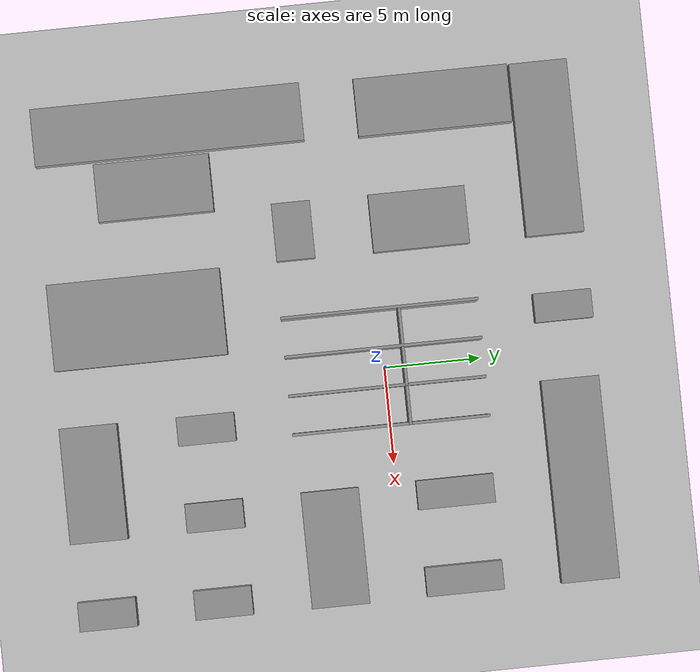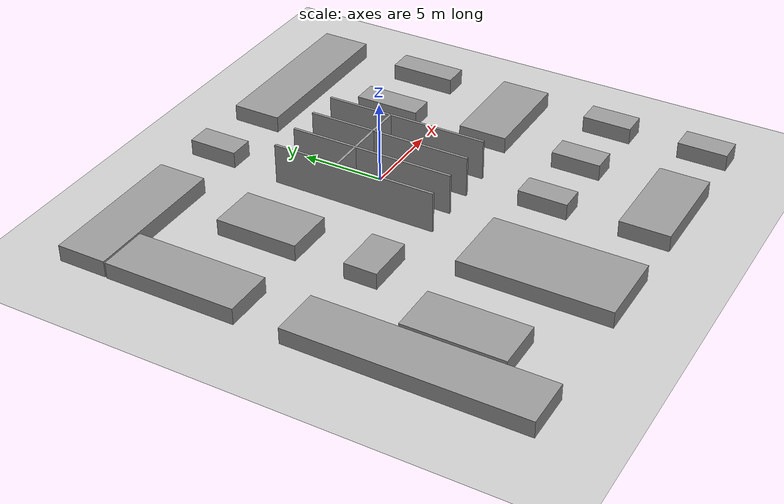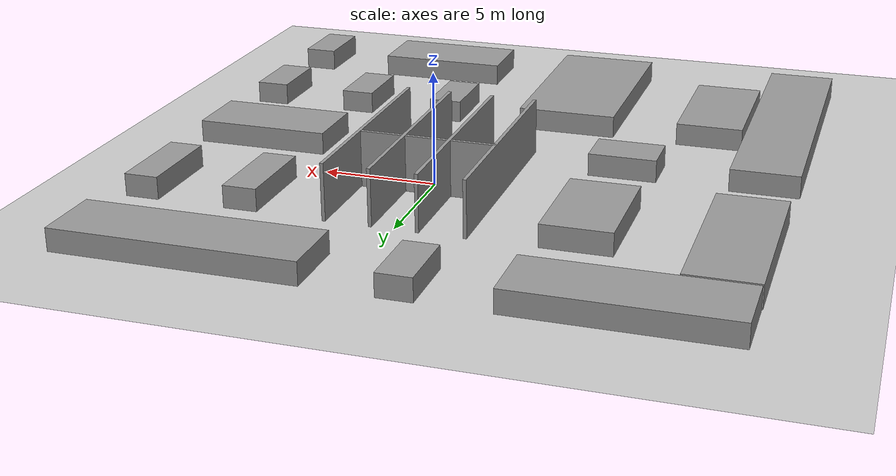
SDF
<sdf version="1.6">
 <world name="default">
  <light name="sun" type="directional">
   <pose>0 0 10 0 -0 0</pose>
   <diffuse>0.8 0.8 0.8 1</diffuse>
   <specular>0.2 0.2 0.2 1</specular>
   <attenuation>
    <range>1000</range>
    <constant>0.9</constant>
    <linear>0.01</linear>
    <quadratic>0.001</quadratic>
   </attenuation>
   <direction>-0.5 0.1 -0.9</direction>
  </light>
  <model name="ground_plane">
   <static>1</static>
   <link name="link">
    <collision name="collision">
     <geometry><plane><normal>0 0 1</normal><size>100 100</size></plane></geometry>
     <surface><friction><ode><mu>100</mu><mu2>50</mu2></ode></friction></surface>
    </collision>
    <visual name="visual">
     <cast_shadows>0</cast_shadows>
     <geometry><plane><normal>0 0 1</normal><size>100 100</size></plane></geometry>
     <material>
      <script><uri>file://media/materials/scripts/gazebo.material</uri><name>Gazebo/Grey</name></script>
     </material>
    </visual>
   </link>
  </model>
  <gravity>0 0 -9.8</gravity>
  <magnetic_field>6e-06 2.3e-05 -4.2e-05</magnetic_field>
  <atmosphere type="adiabatic"/>
  <physics name="default_physics" default="0" type="ode">
   <max_step_size>0.001</max_step_size>
   <real_time_factor>1</real_time_factor>
   <real_time_update_rate>1000</real_time_update_rate>
  </physics>
  <scene><ambient>0.4 0.4 0.4 1</ambient><background>0.7 0.7 0.7 1</background><shadows>1</shadows></scene>
  <audio><device>default</device></audio>
  <spherical_coordinates>
   <surface_model>EARTH_WGS84</surface_model>
   <latitude_deg>0</latitude_deg>
   <longitude_deg>0</longitude_deg>
   <elevation>0</elevation>
   <heading_deg>0</heading_deg>
  </spherical_coordinates>
  <model name="unit_box_1">
   <link name="link">
    <inertial>
     <mass>1</mass>
     <inertia>
      <ixx>0.166667</ixx>
      <ixy>0</ixy>
      <ixz>0</ixz>
      <iyy>0.166667</iyy>
      <iyz>0</iyz>
      <izz>0.166667</izz>
     </inertia>
    </inertial>
    <visual name="visual">
     <geometry><box><size>3 2 1</size></box></geometry>
     <material>
      <script><name>Gazebo/Grey</name><uri>file://media/materials/scripts/gazebo.material</uri></script>
      <shader type="vertex"><normal_map>__default__</normal_map></shader>
      <ambient>0.3 0.3 0.3 1</ambient>
      <diffuse>0.7 0.7 0.7 1</diffuse>
      <specular>0.01 0.01 0.01 1</specular>
      <emissive>0 0 0 1</emissive>
     </material>
    </visual>
    <collision name="collision">
     <geometry><box><size>3 2 1</size></box></geometry>
     <surface>
      <friction>
       <ode><mu>1</mu><mu2>1</mu2><fdir1>0 0 0</fdir1><slip1>0</slip1><slip2>0</slip2></ode>
       <torsional>
        <coefficient>1</coefficient>
        <patch_radius>0</patch_radius>
        <surface_radius>0</surface_radius>
        <use_patch_radius>1</use_patch_radius>
        <ode><slip>0</slip></ode>
       </torsional>
      </friction>
      <bounce><restitution_coefficient>0</restitution_coefficient><threshold>1e+06</threshold></bounce>
      <contact>
       <collide_without_contact>0</collide_without_contact>
       <collide_without_contact_bitmask>1</collide_without_contact_bitmask>
       <collide_bitmask>1</collide_bitmask>
       <ode>
        <soft_cfm>0</soft_cfm>
        <soft_erp>0.2</soft_erp>
        <kp>1e+13</kp>
        <kd>1</kd>
        <max_vel>0.01</max_vel>
        <min_depth>0</min_depth>
       </ode>
       <bullet>
        <split_impulse>1</split_impulse>
        <split_impulse_penetration_threshold>-0.01</split_impulse_penetration_threshold>
        <soft_cfm>0</soft_cfm>
        <soft_erp>0.2</soft_erp>
        <kp>1e+13</kp>
        <kd>1</kd>
       </bullet>
      </contact>
     </surface>
    </collision>
   </link>
   <static>0</static>
   <pose>-7.49956 -4.00012 0.499996 -4e-06 0 0</pose>
  </model>
  <model name="unit_box_9">
   <link name="link">
    <inertial>
     <mass>1</mass>
     <inertia>
      <ixx>0.166667</ixx>
      <ixy>0</ixy>
      <ixz>0</ixz>
      <iyy>0.166667</iyy>
      <iyz>0</iyz>
      <izz>0.166667</izz>
     </inertia>
    </inertial>
    <visual name="visual">
     <geometry><box><size>9 3 1</size></box></geometry>
     <material>
      <script><name>Gazebo/Grey</name><uri>file://media/materials/scripts/gazebo.material</uri></script>
      <shader type="vertex"><normal_map>__default__</normal_map></shader>
      <ambient>0.3 0.3 0.3 1</ambient>
      <diffuse>0.7 0.7 0.7 1</diffuse>
      <specular>0.01 0.01 0.01 1</specular>
      <emissive>0 0 0 1</emissive>
     </material>
     <pose>0 0 0.5 0 -0 0</pose>
    </visual>
    <collision name="collision">
     <pose>0 0 0.5 0 -0 0</pose>
     <geometry><box><size>9 3 1</size></box></geometry>
     <surface>
      <friction>
       <ode><mu>1</mu><mu2>1</mu2><fdir1>0 0 0</fdir1><slip1>0</slip1><slip2>0</slip2></ode>
       <torsional>
        <coefficient>1</coefficient>
        <patch_radius>0</patch_radius>
        <surface_radius>0</surface_radius>
        <use_patch_radius>1</use_patch_radius>
        <ode><slip>0</slip></ode>
       </torsional>
      </friction>
      <bounce><restitution_coefficient>0</restitution_coefficient><threshold>1e+06</threshold></bounce>
      <contact>
       <collide_without_contact>0</collide_without_contact>
       <collide_without_contact_bitmask>1</collide_without_contact_bitmask>
       <collide_bitmask>1</collide_bitmask>
       <ode>
        <soft_cfm>0</soft_cfm>
        <soft_erp>0.2</soft_erp>
        <kp>1e+13</kp>
        <kd>1</kd>
        <max_vel>0.01</max_vel>
        <min_depth>0</min_depth>
       </ode>
       <bullet>
        <split_impulse>1</split_impulse>
        <split_impulse_penetration_threshold>-0.01</split_impulse_penetration_threshold>
        <soft_cfm>0</soft_cfm>
        <soft_erp>0.2</soft_erp>
        <kp>1e+13</kp>
        <kd>1</kd>
       </bullet>
      </contact>
     </surface>
    </collision>
   </link>
   <static>1</static>
   <pose>-10.4816 9.48299 0 0 -0 0</pose>
  </model>
  <model name="unit_box_10">
   <link name="link">
    <inertial>
     <mass>1</mass>
     <inertia>
      <ixx>0.166667</ixx>
      <ixy>0</ixy>
      <ixz>0</ixz>
      <iyy>0.166667</iyy>
      <iyz>0</iyz>
      <izz>0.166667</izz>
     </inertia>
    </inertial>
    <visual name="visual">
     <geometry><box><size>3 8 1</size></box></geometry>
     <material>
      <script><name>Gazebo/Grey</name><uri>file://media/materials/scripts/gazebo.material</uri></script>
      <shader type="vertex"><normal_map>__default__</normal_map></shader>
      <ambient>0.3 0.3 0.3 1</ambient>
      <diffuse>0.7 0.7 0.7 1</diffuse>
      <specular>0.01 0.01 0.01 1</specular>
      <emissive>0 0 0 1</emissive>
     </material>
     <pose>0 0 0.5 0 -0 0</pose>
    </visual>
    <collision name="collision">
     <pose>0 0 0.5 0 -0 0</pose>
     <geometry><box><size>3 8 1</size></box></geometry>
     <surface>
      <friction>
       <ode><mu>1</mu><mu2>1</mu2><fdir1>0 0 0</fdir1><slip1>0</slip1><slip2>0</slip2></ode>
       <torsional>
        <coefficient>1</coefficient>
        <patch_radius>0</patch_radius>
        <surface_radius>0</surface_radius>
        <use_patch_radius>1</use_patch_radius>
        <ode><slip>0</slip></ode>
       </torsional>
      </friction>
      <bounce><restitution_coefficient>0</restitution_coefficient><threshold>1e+06</threshold></bounce>
      <contact>
       <collide_without_contact>0</collide_without_contact>
       <collide_without_contact_bitmask>1</collide_without_contact_bitmask>
       <collide_bitmask>1</collide_bitmask>
       <ode>
        <soft_cfm>0</soft_cfm>
        <soft_erp>0.2</soft_erp>
        <kp>1e+13</kp>
        <kd>1</kd>
        <max_vel>0.01</max_vel>
        <min_depth>0</min_depth>
       </ode>
       <bullet>
        <split_impulse>1</split_impulse>
        <split_impulse_penetration_threshold>-0.01</split_impulse_penetration_threshold>
        <soft_cfm>0</soft_cfm>
        <soft_erp>0.2</soft_erp>
        <kp>1e+13</kp>
        <kd>1</kd>
       </bullet>
      </contact>
     </surface>
    </collision>
   </link>
   <static>1</static>
   <pose>-13.5168 3.86827 0 0 -0 0</pose>
  </model>
  <model name="unit_box_11">
   <link name="link">
    <inertial>
     <mass>1</mass>
     <inertia>
      <ixx>0.166667</ixx>
      <ixy>0</ixy>
      <ixz>0</ixz>
      <iyy>0.166667</iyy>
      <iyz>0</iyz>
      <izz>0.166667</izz>
     </inertia>
    </inertial>
    <visual name="visual">
     <geometry><box><size>4.5 9 1</size></box></geometry>
     <material>
      <script><name>Gazebo/Grey</name><uri>file://media/materials/scripts/gazebo.material</uri></script>
      <shader type="vertex"><normal_map>__default__</normal_map></shader>
      <ambient>0.3 0.3 0.3 1</ambient>
      <diffuse>0.7 0.7 0.7 1</diffuse>
      <specular>0.01 0.01 0.01 1</specular>
      <emissive>0 0 0 1</emissive>
     </material>
     <pose>0 0 0.5 0 -0 0</pose>
    </visual>
    <collision name="collision">
     <pose>0 0 0.5 0 -0 0</pose>
     <geometry><box><size>4.5 9 1</size></box></geometry>
     <surface>
      <friction>
       <ode><mu>1</mu><mu2>1</mu2><fdir1>0 0 0</fdir1><slip1>0</slip1><slip2>0</slip2></ode>
       <torsional>
        <coefficient>1</coefficient>
        <patch_radius>0</patch_radius>
        <surface_radius>0</surface_radius>
        <use_patch_radius>1</use_patch_radius>
        <ode><slip>0</slip></ode>
       </torsional>
      </friction>
      <bounce><restitution_coefficient>0</restitution_coefficient><threshold>1e+06</threshold></bounce>
      <contact>
       <collide_without_contact>0</collide_without_contact>
       <collide_without_contact_bitmask>1</collide_without_contact_bitmask>
       <collide_bitmask>1</collide_bitmask>
       <ode>
        <soft_cfm>0</soft_cfm>
        <soft_erp>0.2</soft_erp>
        <kp>1e+13</kp>
        <kd>1</kd>
        <max_vel>0.01</max_vel>
        <min_depth>0</min_depth>
       </ode>
       <bullet>
        <split_impulse>1</split_impulse>
        <split_impulse_penetration_threshold>-0.01</split_impulse_penetration_threshold>
        <soft_cfm>0</soft_cfm>
        <soft_erp>0.2</soft_erp>
        <kp>1e+13</kp>
        <kd>1</kd>
       </bullet>
      </contact>
     </surface>
    </collision>
   </link>
   <static>1</static>
   <pose>-3.73346 -12.4996 0 0 -0 0</pose>
  </model>
  <model name="unit_box_13">
   <link name="link">
    <inertial>
     <mass>1</mass>
     <inertia>
      <ixx>0.166667</ixx>
      <ixy>0</ixy>
      <ixz>0</ixz>
      <iyy>0.166667</iyy>
      <iyz>0</iyz>
      <izz>0.166667</izz>
     </inertia>
    </inertial>
    <visual name="visual">
     <geometry><box><size>3 6 1</size></box></geometry>
     <material>
      <script><name>Gazebo/Grey</name><uri>file://media/materials/scripts/gazebo.material</uri></script>
      <shader type="vertex"><normal_map>__default__</normal_map></shader>
      <ambient>0.3 0.3 0.3 1</ambient>
      <diffuse>0.7 0.7 0.7 1</diffuse>
      <specular>0.01 0.01 0.01 1</specular>
      <emissive>0 0 0 1</emissive>
     </material>
     <pose>0 0 0.5 0 -0 0</pose>
    </visual>
    <collision name="collision">
     <pose>0 0 0.5 0 -0 0</pose>
     <geometry><box><size>3 6 1</size></box></geometry>
     <surface>
      <friction>
       <ode><mu>1</mu><mu2>1</mu2><fdir1>0 0 0</fdir1><slip1>0</slip1><slip2>0</slip2></ode>
       <torsional>
        <coefficient>1</coefficient>
        <patch_radius>0</patch_radius>
        <surface_radius>0</surface_radius>
        <use_patch_radius>1</use_patch_radius>
        <ode><slip>0</slip></ode>
       </torsional>
      </friction>
      <bounce><restitution_coefficient>0</restitution_coefficient><threshold>1e+06</threshold></bounce>
      <contact>
       <collide_without_contact>0</collide_without_contact>
       <collide_without_contact_bitmask>1</collide_without_contact_bitmask>
       <collide_bitmask>1</collide_bitmask>
       <ode>
        <soft_cfm>0</soft_cfm>
        <soft_erp>0.2</soft_erp>
        <kp>1e+13</kp>
        <kd>1</kd>
        <max_vel>0.01</max_vel>
        <min_depth>0</min_depth>
       </ode>
       <bullet>
        <split_impulse>1</split_impulse>
        <split_impulse_penetration_threshold>-0.01</split_impulse_penetration_threshold>
        <soft_cfm>0</soft_cfm>
        <soft_erp>0.2</soft_erp>
        <kp>1e+13</kp>
        <kd>1</kd>
       </bullet>
      </contact>
     </surface>
    </collision>
   </link>
   <static>1</static>
   <pose>-10.4486 -10.9678 0 0 -0 0</pose>
  </model>
  <model name="unit_box_12">
   <link name="link">
    <inertial>
     <mass>1</mass>
     <inertia>
      <ixx>0.166667</ixx>
      <ixy>0</ixy>
      <ixz>0</ixz>
      <iyy>0.166667</iyy>
      <iyz>0</iyz>
      <izz>0.166667</izz>
     </inertia>
    </inertial>
    <visual name="visual">
     <geometry><box><size>3 14 1</size></box></geometry>
     <material>
      <script><name>Gazebo/Grey</name><uri>file://media/materials/scripts/gazebo.material</uri></script>
      <shader type="vertex"><normal_map>__default__</normal_map></shader>
      <ambient>0.3 0.3 0.3 1</ambient>
      <diffuse>0.7 0.7 0.7 1</diffuse>
      <specular>0.01 0.01 0.01 1</specular>
      <emissive>0 0 0 1</emissive>
     </material>
     <pose>0 0 0.5 0 -0 0</pose>
    </visual>
    <collision name="collision">
     <pose>0 0 0.5 0 -0 0</pose>
     <geometry><box><size>3 14 1</size></box></geometry>
     <surface>
      <friction>
       <ode><mu>1</mu><mu2>1</mu2><fdir1>0 0 0</fdir1><slip1>0</slip1><slip2>0</slip2></ode>
       <torsional>
        <coefficient>1</coefficient>
        <patch_radius>0</patch_radius>
        <surface_radius>0</surface_radius>
        <use_patch_radius>1</use_patch_radius>
        <ode><slip>0</slip></ode>
       </torsional>
      </friction>
      <bounce><restitution_coefficient>0</restitution_coefficient><threshold>1e+06</threshold></bounce>
      <contact>
       <collide_without_contact>0</collide_without_contact>
       <collide_without_contact_bitmask>1</collide_without_contact_bitmask>
       <collide_bitmask>1</collide_bitmask>
       <ode>
        <soft_cfm>0</soft_cfm>
        <soft_erp>0.2</soft_erp>
        <kp>1e+13</kp>
        <kd>1</kd>
        <max_vel>0.01</max_vel>
        <min_depth>0</min_depth>
       </ode>
       <bullet>
        <split_impulse>1</split_impulse>
        <split_impulse_penetration_threshold>-0.01</split_impulse_penetration_threshold>
        <soft_cfm>0</soft_cfm>
        <soft_erp>0.2</soft_erp>
        <kp>1e+13</kp>
        <kd>1</kd>
       </bullet>
      </contact>
     </surface>
    </collision>
   </link>
   <static>1</static>
   <pose>-13.6321 -9.95451 0 0 -0 0</pose>
  </model>
  <model name="unit_box_7_0">
   <link name="link">
    <inertial>
     <mass>1</mass>
     <inertia>
      <ixx>0.166667</ixx>
      <ixy>0</ixy>
      <ixz>0</ixz>
      <iyy>0.166667</iyy>
      <iyz>0</iyz>
      <izz>0.166667</izz>
     </inertia>
    </inertial>
    <visual name="visual">
     <geometry><box><size>10.5 3 1</size></box></geometry>
     <material>
      <script><name>Gazebo/Grey</name><uri>file://media/materials/scripts/gazebo.material</uri></script>
      <shader type="vertex"><normal_map>__default__</normal_map></shader>
      <ambient>0.3 0.3 0.3 1</ambient>
      <diffuse>0.7 0.7 0.7 1</diffuse>
      <specular>0.01 0.01 0.01 1</specular>
      <emissive>0 0 0 1</emissive>
     </material>
     <pose>0 0 0.5 0 -0 0</pose>
    </visual>
    <collision name="collision">
     <pose>0 0 0.5 0 -0 0</pose>
     <geometry><box><size>10.5 3 1</size></box></geometry>
     <surface>
      <friction>
       <ode><mu>1</mu><mu2>1</mu2><fdir1>0 0 0</fdir1><slip1>0</slip1><slip2>0</slip2></ode>
       <torsional>
        <coefficient>1</coefficient>
        <patch_radius>0</patch_radius>
        <surface_radius>0</surface_radius>
        <use_patch_radius>1</use_patch_radius>
        <ode><slip>0</slip></ode>
       </torsional>
      </friction>
      <bounce><restitution_coefficient>0</restitution_coefficient><threshold>1e+06</threshold></bounce>
      <contact>
       <collide_without_contact>0</collide_without_contact>
       <collide_without_contact_bitmask>1</collide_without_contact_bitmask>
       <collide_bitmask>1</collide_bitmask>
       <ode>
        <soft_cfm>0</soft_cfm>
        <soft_erp>0.2</soft_erp>
        <kp>1e+13</kp>
        <kd>1</kd>
        <max_vel>0.01</max_vel>
        <min_depth>0</min_depth>
       </ode>
       <bullet>
        <split_impulse>1</split_impulse>
        <split_impulse_penetration_threshold>-0.01</split_impulse_penetration_threshold>
        <soft_cfm>0</soft_cfm>
        <soft_erp>0.2</soft_erp>
        <kp>1e+13</kp>
        <kd>1</kd>
       </bullet>
      </contact>
     </surface>
    </collision>
   </link>
   <static>1</static>
   <pose>6.75811 9.46237 0 0 -0 0</pose>
  </model>
  <model name="unit_box_2_clone_clone_clone">
   <link name="link">
    <inertial>
     <mass>1</mass>
     <inertia>
      <ixx>0.166667</ixx>
      <ixy>0</ixy>
      <ixz>0</ixz>
      <iyy>0.166667</iyy>
      <iyz>0</iyz>
      <izz>0.166667</izz>
     </inertia>
    </inertial>
    <visual name="visual">
     <geometry><box><size>1.5 3 1</size></box></geometry>
     <material>
      <script><name>Gazebo/Grey</name><uri>file://media/materials/scripts/gazebo.material</uri></script>
      <shader type="vertex"><normal_map>__default__</normal_map></shader>
      <ambient>0.3 0.3 0.3 1</ambient>
      <diffuse>0.7 0.7 0.7 1</diffuse>
      <specular>0.01 0.01 0.01 1</specular>
      <emissive>0 0 0 1</emissive>
     </material>
    </visual>
    <collision name="collision">
     <geometry><box><size>1.5 3 1</size></box></geometry>
     <surface>
      <friction>
       <ode><mu>1</mu><mu2>1</mu2><fdir1>0 0 0</fdir1><slip1>0</slip1><slip2>0</slip2></ode>
       <torsional>
        <coefficient>1</coefficient>
        <patch_radius>0</patch_radius>
        <surface_radius>0</surface_radius>
        <use_patch_radius>1</use_patch_radius>
        <ode><slip>0</slip></ode>
       </torsional>
      </friction>
      <bounce><restitution_coefficient>0</restitution_coefficient><threshold>1e+06</threshold></bounce>
      <contact>
       <collide_without_contact>0</collide_without_contact>
       <collide_without_contact_bitmask>1</collide_without_contact_bitmask>
       <collide_bitmask>1</collide_bitmask>
       <ode>
        <soft_cfm>0</soft_cfm>
        <soft_erp>0.2</soft_erp>
        <kp>1e+13</kp>
        <kd>1</kd>
        <max_vel>0.01</max_vel>
        <min_depth>0</min_depth>
       </ode>
       <bullet>
        <split_impulse>1</split_impulse>
        <split_impulse_penetration_threshold>-0.01</split_impulse_penetration_threshold>
        <soft_cfm>0</soft_cfm>
        <soft_erp>0.2</soft_erp>
        <kp>1e+13</kp>
        <kd>1</kd>
       </bullet>
      </contact>
     </surface>
    </collision>
   </link>
   <static>0</static>
   <pose>11.25 -15.5 0.5 0 -0 -1e-05</pose>
  </model>
  <model name="unit_box_2_clone_clone">
   <link name="link">
    <inertial>
     <mass>1</mass>
     <inertia>
      <ixx>0.166667</ixx>
      <ixy>0</ixy>
      <ixz>0</ixz>
      <iyy>0.166667</iyy>
      <iyz>0</iyz>
      <izz>0.166667</izz>
     </inertia>
    </inertial>
    <visual name="visual">
     <geometry><box><size>1.5 3 1</size></box></geometry>
     <material>
      <script><name>Gazebo/Grey</name><uri>file://media/materials/scripts/gazebo.material</uri></script>
      <shader type="vertex"><normal_map>__default__</normal_map></shader>
      <ambient>0.3 0.3 0.3 1</ambient>
      <diffuse>0.7 0.7 0.7 1</diffuse>
      <specular>0.01 0.01 0.01 1</specular>
      <emissive>0 0 0 1</emissive>
     </material>
    </visual>
    <collision name="collision">
     <geometry><box><size>1.5 3 1</size></box></geometry>
     <surface>
      <friction>
       <ode><mu>1</mu><mu2>1</mu2><fdir1>0 0 0</fdir1><slip1>0</slip1><slip2>0</slip2></ode>
       <torsional>
        <coefficient>1</coefficient>
        <patch_radius>0</patch_radius>
        <surface_radius>0</surface_radius>
        <use_patch_radius>1</use_patch_radius>
        <ode><slip>0</slip></ode>
       </torsional>
      </friction>
      <bounce><restitution_coefficient>0</restitution_coefficient><threshold>1e+06</threshold></bounce>
      <contact>
       <collide_without_contact>0</collide_without_contact>
       <collide_without_contact_bitmask>1</collide_without_contact_bitmask>
       <collide_bitmask>1</collide_bitmask>
       <ode>
        <soft_cfm>0</soft_cfm>
        <soft_erp>0.2</soft_erp>
        <kp>1e+13</kp>
        <kd>1</kd>
        <max_vel>0.01</max_vel>
        <min_depth>0</min_depth>
       </ode>
       <bullet>
        <split_impulse>1</split_impulse>
        <split_impulse_penetration_threshold>-0.01</split_impulse_penetration_threshold>
        <soft_cfm>0</soft_cfm>
        <soft_erp>0.2</soft_erp>
        <kp>1e+13</kp>
        <kd>1</kd>
       </bullet>
      </contact>
     </surface>
    </collision>
   </link>
   <static>0</static>
   <pose>11.25 -9.49999 0.5 0 -0 -1e-05</pose>
  </model>
  <model name="unit_box_2_clone">
   <link name="link">
    <inertial>
     <mass>1</mass>
     <inertia>
      <ixx>0.166667</ixx>
      <ixy>0</ixy>
      <ixz>0</ixz>
      <iyy>0.166667</iyy>
      <iyz>0</iyz>
      <izz>0.166667</izz>
     </inertia>
    </inertial>
    <visual name="visual">
     <geometry><box><size>1.5 3 1</size></box></geometry>
     <material>
      <script><name>Gazebo/Grey</name><uri>file://media/materials/scripts/gazebo.material</uri></script>
      <shader type="vertex"><normal_map>__default__</normal_map></shader>
      <ambient>0.3 0.3 0.3 1</ambient>
      <diffuse>0.7 0.7 0.7 1</diffuse>
      <specular>0.01 0.01 0.01 1</specular>
      <emissive>0 0 0 1</emissive>
     </material>
    </visual>
    <collision name="collision">
     <geometry><box><size>1.5 3 1</size></box></geometry>
     <surface>
      <friction>
       <ode><mu>1</mu><mu2>1</mu2><fdir1>0 0 0</fdir1><slip1>0</slip1><slip2>0</slip2></ode>
       <torsional>
        <coefficient>1</coefficient>
        <patch_radius>0</patch_radius>
        <surface_radius>0</surface_radius>
        <use_patch_radius>1</use_patch_radius>
        <ode><slip>0</slip></ode>
       </torsional>
      </friction>
      <bounce><restitution_coefficient>0</restitution_coefficient><threshold>1e+06</threshold></bounce>
      <contact>
       <collide_without_contact>0</collide_without_contact>
       <collide_without_contact_bitmask>1</collide_without_contact_bitmask>
       <collide_bitmask>1</collide_bitmask>
       <ode>
        <soft_cfm>0</soft_cfm>
        <soft_erp>0.2</soft_erp>
        <kp>1e+13</kp>
        <kd>1</kd>
        <max_vel>0.01</max_vel>
        <min_depth>0</min_depth>
       </ode>
       <bullet>
        <split_impulse>1</split_impulse>
        <split_impulse_penetration_threshold>-0.01</split_impulse_penetration_threshold>
        <soft_cfm>0</soft_cfm>
        <soft_erp>0.2</soft_erp>
        <kp>1e+13</kp>
        <kd>1</kd>
       </bullet>
      </contact>
     </surface>
    </collision>
   </link>
   <static>0</static>
   <pose>6.75003 -9.49999 0.5 0 -0 -1e-05</pose>
  </model>
  <model name="unit_box_2">
   <link name="link">
    <inertial>
     <mass>1</mass>
     <inertia>
      <ixx>0.166667</ixx>
      <ixy>0</ixy>
      <ixz>0</ixz>
      <iyy>0.166667</iyy>
      <iyz>0</iyz>
      <izz>0.166667</izz>
     </inertia>
    </inertial>
    <visual name="visual">
     <geometry><box><size>1.5 3 1</size></box></geometry>
     <material>
      <script><name>Gazebo/Grey</name><uri>file://media/materials/scripts/gazebo.material</uri></script>
      <shader type="vertex"><normal_map>__default__</normal_map></shader>
      <ambient>0.3 0.3 0.3 1</ambient>
      <diffuse>0.7 0.7 0.7 1</diffuse>
      <specular>0.01 0.01 0.01 1</specular>
      <emissive>0 0 0 1</emissive>
     </material>
    </visual>
    <collision name="collision">
     <geometry><box><size>1.5 3 1</size></box></geometry>
     <surface>
      <friction>
       <ode><mu>1</mu><mu2>1</mu2><fdir1>0 0 0</fdir1><slip1>0</slip1><slip2>0</slip2></ode>
       <torsional>
        <coefficient>1</coefficient>
        <patch_radius>0</patch_radius>
        <surface_radius>0</surface_radius>
        <use_patch_radius>1</use_patch_radius>
        <ode><slip>0</slip></ode>
       </torsional>
      </friction>
      <bounce><restitution_coefficient>0</restitution_coefficient><threshold>1e+06</threshold></bounce>
      <contact>
       <collide_without_contact>0</collide_without_contact>
       <collide_without_contact_bitmask>1</collide_without_contact_bitmask>
       <collide_bitmask>1</collide_bitmask>
       <ode>
        <soft_cfm>0</soft_cfm>
        <soft_erp>0.2</soft_erp>
        <kp>1e+13</kp>
        <kd>1</kd>
        <max_vel>0.01</max_vel>
        <min_depth>0</min_depth>
       </ode>
       <bullet>
        <split_impulse>1</split_impulse>
        <split_impulse_penetration_threshold>-0.01</split_impulse_penetration_threshold>
        <soft_cfm>0</soft_cfm>
        <soft_erp>0.2</soft_erp>
        <kp>1e+13</kp>
        <kd>1</kd>
       </bullet>
      </contact>
     </surface>
    </collision>
   </link>
   <static>0</static>
   <pose>2.25001 -9.49999 0.5 0 -0 -1e-05</pose>
  </model>
  <model name="unit_box_6">
   <link name="link">
    <inertial>
     <mass>1</mass>
     <inertia>
      <ixx>0.166667</ixx>
      <ixy>0</ixy>
      <ixz>0</ixz>
      <iyy>0.166667</iyy>
      <iyz>0</iyz>
      <izz>0.166667</izz>
     </inertia>
    </inertial>
    <visual name="visual">
     <geometry><box><size>1.5 4 1</size></box></geometry>
     <material>
      <script><name>Gazebo/Grey</name><uri>file://media/materials/scripts/gazebo.material</uri></script>
      <shader type="vertex"><normal_map>__default__</normal_map></shader>
      <ambient>0.3 0.3 0.3 1</ambient>
      <diffuse>0.7 0.7 0.7 1</diffuse>
      <specular>0.01 0.01 0.01 1</specular>
      <emissive>0 0 0 1</emissive>
     </material>
    </visual>
    <collision name="collision">
     <geometry><box><size>1.5 4 1</size></box></geometry>
     <surface>
      <friction>
       <ode><mu>1</mu><mu2>1</mu2><fdir1>0 0 0</fdir1><slip1>0</slip1><slip2>0</slip2></ode>
       <torsional>
        <coefficient>1</coefficient>
        <patch_radius>0</patch_radius>
        <surface_radius>0</surface_radius>
        <use_patch_radius>1</use_patch_radius>
        <ode><slip>0</slip></ode>
       </torsional>
      </friction>
      <bounce><restitution_coefficient>0</restitution_coefficient><threshold>1e+06</threshold></bounce>
      <contact>
       <collide_without_contact>0</collide_without_contact>
       <collide_without_contact_bitmask>1</collide_without_contact_bitmask>
       <collide_bitmask>1</collide_bitmask>
       <ode>
        <soft_cfm>0</soft_cfm>
        <soft_erp>0.2</soft_erp>
        <kp>1e+13</kp>
        <kd>1</kd>
        <max_vel>0.01</max_vel>
        <min_depth>0</min_depth>
       </ode>
       <bullet>
        <split_impulse>1</split_impulse>
        <split_impulse_penetration_threshold>-0.01</split_impulse_penetration_threshold>
        <soft_cfm>0</soft_cfm>
        <soft_erp>0.2</soft_erp>
        <kp>1e+13</kp>
        <kd>1</kd>
       </bullet>
      </contact>
     </surface>
    </collision>
   </link>
   <static>0</static>
   <pose>6.75001 3.00001 0.5 -0 1e-06 -1.2e-05</pose>
  </model>
  <model name="unit_box_6_clone">
   <link name="link">
    <inertial>
     <mass>1</mass>
     <inertia>
      <ixx>0.166667</ixx>
      <ixy>0</ixy>
      <ixz>0</ixz>
      <iyy>0.166667</iyy>
      <iyz>0</iyz>
      <izz>0.166667</izz>
     </inertia>
    </inertial>
    <visual name="visual">
     <geometry><box><size>1.5 4 1</size></box></geometry>
     <material>
      <script><name>Gazebo/Grey</name><uri>file://media/materials/scripts/gazebo.material</uri></script>
      <shader type="vertex"><normal_map>__default__</normal_map></shader>
      <ambient>0.3 0.3 0.3 1</ambient>
      <diffuse>0.7 0.7 0.7 1</diffuse>
      <specular>0.01 0.01 0.01 1</specular>
      <emissive>0 0 0 1</emissive>
     </material>
    </visual>
    <collision name="collision">
     <geometry><box><size>1.5 4 1</size></box></geometry>
     <surface>
      <friction>
       <ode><mu>1</mu><mu2>1</mu2><fdir1>0 0 0</fdir1><slip1>0</slip1><slip2>0</slip2></ode>
       <torsional>
        <coefficient>1</coefficient>
        <patch_radius>0</patch_radius>
        <surface_radius>0</surface_radius>
        <use_patch_radius>1</use_patch_radius>
        <ode><slip>0</slip></ode>
       </torsional>
      </friction>
      <bounce><restitution_coefficient>0</restitution_coefficient><threshold>1e+06</threshold></bounce>
      <contact>
       <collide_without_contact>0</collide_without_contact>
       <collide_without_contact_bitmask>1</collide_without_contact_bitmask>
       <collide_bitmask>1</collide_bitmask>
       <ode>
        <soft_cfm>0</soft_cfm>
        <soft_erp>0.2</soft_erp>
        <kp>1e+13</kp>
        <kd>1</kd>
        <max_vel>0.01</max_vel>
        <min_depth>0</min_depth>
       </ode>
       <bullet>
        <split_impulse>1</split_impulse>
        <split_impulse_penetration_threshold>-0.01</split_impulse_penetration_threshold>
        <soft_cfm>0</soft_cfm>
        <soft_erp>0.2</soft_erp>
        <kp>1e+13</kp>
        <kd>1</kd>
       </bullet>
      </contact>
     </surface>
    </collision>
   </link>
   <static>0</static>
   <pose>11.25 3.00001 0.5 -0 1e-06 -1.2e-05</pose>
  </model>
  <model name="unit_box_2_clone_clone_clone_0">
   <link name="link">
    <inertial>
     <mass>1</mass>
     <inertia>
      <ixx>0.166667</ixx>
      <ixy>0</ixy>
      <ixz>0</ixz>
      <iyy>0.166667</iyy>
      <iyz>0</iyz>
      <izz>0.166667</izz>
     </inertia>
    </inertial>
    <visual name="visual">
     <geometry><box><size>1.5 3 1</size></box></geometry>
     <material>
      <script><name>Gazebo/Grey</name><uri>file://media/materials/scripts/gazebo.material</uri></script>
      <shader type="vertex"><normal_map>__default__</normal_map></shader>
      <ambient>0.3 0.3 0.3 1</ambient>
      <diffuse>0.7 0.7 0.7 1</diffuse>
      <specular>0.01 0.01 0.01 1</specular>
      <emissive>0 0 0 1</emissive>
     </material>
    </visual>
    <collision name="collision">
     <geometry><box><size>1.5 3 1</size></box></geometry>
     <surface>
      <friction>
       <ode><mu>1</mu><mu2>1</mu2><fdir1>0 0 0</fdir1><slip1>0</slip1><slip2>0</slip2></ode>
       <torsional>
        <coefficient>1</coefficient>
        <patch_radius>0</patch_radius>
        <surface_radius>0</surface_radius>
        <use_patch_radius>1</use_patch_radius>
        <ode><slip>0</slip></ode>
       </torsional>
      </friction>
      <bounce><restitution_coefficient>0</restitution_coefficient><threshold>1e+06</threshold></bounce>
      <contact>
       <collide_without_contact>0</collide_without_contact>
       <collide_without_contact_bitmask>1</collide_without_contact_bitmask>
       <collide_bitmask>1</collide_bitmask>
       <ode>
        <soft_cfm>0</soft_cfm>
        <soft_erp>0.2</soft_erp>
        <kp>1e+13</kp>
        <kd>1</kd>
        <max_vel>0.01</max_vel>
        <min_depth>0</min_depth>
       </ode>
       <bullet>
        <split_impulse>1</split_impulse>
        <split_impulse_penetration_threshold>-0.01</split_impulse_penetration_threshold>
        <soft_cfm>0</soft_cfm>
        <soft_erp>0.2</soft_erp>
        <kp>1e+13</kp>
        <kd>1</kd>
       </bullet>
      </contact>
     </surface>
    </collision>
   </link>
   <static>0</static>
   <pose>-2.24999 9.50001 0.5 0 -0 -1e-05</pose>
  </model>
  <model name="cangku1">
   <link name="Wall_12">
    <collision name="Wall_12_Collision">
     <geometry><box><size>10.15 0.15 2.5</size></box></geometry>
     <pose>0 0 1.25 0 -0 0</pose>
    </collision>
    <visual name="Wall_12_Visual">
     <pose>0 0 1.25 0 -0 0</pose>
     <geometry><box><size>10.15 0.15 2.5</size></box></geometry>
     <material>
      <script><uri>file://media/materials/scripts/gazebo.material</uri><name>Gazebo/Grey</name></script>
      <ambient>1 1 1 1</ambient>
     </material>
     <meta><layer>0</layer></meta>
    </visual>
    <pose>3 0 0 0 -0 1.5708</pose>
   </link>
   <link name="Wall_14">
    <collision name="Wall_14_Collision">
     <geometry><box><size>10.15 0.15 2.5</size></box></geometry>
     <pose>0 0 1.25 0 -0 0</pose>
    </collision>
    <visual name="Wall_14_Visual">
     <pose>0 0 1.25 0 -0 0</pose>
     <geometry><box><size>10.15 0.15 2.5</size></box></geometry>
     <material>
      <script><uri>file://media/materials/scripts/gazebo.material</uri><name>Gazebo/Grey</name></script>
      <ambient>1 1 1 1</ambient>
     </material>
     <meta><layer>0</layer></meta>
    </visual>
    <pose>1 0 0 0 -0 1.5708</pose>
   </link>
   <link name="Wall_16">
    <collision name="Wall_16_Collision">
     <geometry><box><size>10.15 0.15 2.5</size></box></geometry>
     <pose>0 0 1.25 0 -0 0</pose>
    </collision>
    <visual name="Wall_16_Visual">
     <pose>0 0 1.25 0 -0 0</pose>
     <geometry><box><size>10.15 0.15 2.5</size></box></geometry>
     <material>
      <script><uri>file://media/materials/scripts/gazebo.material</uri><name>Gazebo/Grey</name></script>
      <ambient>1 1 1 1</ambient>
     </material>
     <meta><layer>0</layer></meta>
    </visual>
    <pose>-3 0 0 0 -0 1.5708</pose>
   </link>
   <link name="Wall_18">
    <collision name="Wall_18_Collision">
     <geometry><box><size>6.15 0.15 2.5</size></box></geometry>
     <pose>0 0 1.25 0 -0 0</pose>
    </collision>
    <visual name="Wall_18_Visual">
     <pose>0 0 1.25 0 -0 0</pose>
     <geometry><box><size>6.15 0.15 2.5</size></box></geometry>
     <material>
      <script><uri>file://media/materials/scripts/gazebo.material</uri><name>Gazebo/Grey</name></script>
      <ambient>1 1 1 1</ambient>
     </material>
     <meta><layer>0</layer></meta>
    </visual>
    <pose>0 1 0 0 -0 0</pose>
   </link>
   <static>1</static>
  </model>
  <model name="cangku2">
   <pose>-1 0 0 0 -0 0</pose>
   <link name="Wall_0">
    <collision name="Wall_0_Collision">
     <geometry><box><size>10.15 0.15 2.5</size></box></geometry>
     <pose>0 0 1.25 0 -0 0</pose>
    </collision>
    <visual name="Wall_0_Visual">
     <pose>0 0 1.25 0 -0 0</pose>
     <geometry><box><size>10.15 0.15 2.5</size></box></geometry>
     <material>
      <script><uri>file://media/materials/scripts/gazebo.material</uri><name>Gazebo/Grey</name></script>
      <ambient>1 1 1 1</ambient>
     </material>
     <meta><layer>0</layer></meta>
    </visual>
    <pose>0 0 0 0 -0 1.5708</pose>
   </link>
   <static>1</static>
  </model>
  <model name="unit_box_5_1">
   <link name="link">
    <inertial>
     <mass>1</mass>
     <inertia>
      <ixx>0.166667</ixx>
      <ixy>0</ixy>
      <ixz>0</ixz>
      <iyy>0.166667</iyy>
      <iyz>0</iyz>
      <izz>0.166667</izz>
     </inertia>
    </inertial>
    <visual name="visual">
     <geometry><box><size>6 3 1</size></box></geometry>
     <material>
      <script><name>Gazebo/Grey</name><uri>file://media/materials/scripts/gazebo.material</uri></script>
      <shader type="vertex"><normal_map>__default__</normal_map></shader>
      <ambient>0.3 0.3 0.3 1</ambient>
      <diffuse>0.7 0.7 0.7 1</diffuse>
      <specular>0.01 0.01 0.01 1</specular>
      <emissive>0 0 0 1</emissive>
     </material>
     <pose>0 0 0.5 0 -0 0</pose>
    </visual>
    <collision name="collision">
     <pose>0 0 0.5 0 -0 0</pose>
     <geometry><box><size>6 3 1</size></box></geometry>
     <surface>
      <friction>
       <ode><mu>1</mu><mu2>1</mu2><fdir1>0 0 0</fdir1><slip1>0</slip1><slip2>0</slip2></ode>
       <torsional>
        <coefficient>1</coefficient>
        <patch_radius>0</patch_radius>
        <surface_radius>0</surface_radius>
        <use_patch_radius>1</use_patch_radius>
        <ode><slip>0</slip></ode>
       </torsional>
      </friction>
      <bounce><restitution_coefficient>0</restitution_coefficient><threshold>1e+06</threshold></bounce>
      <contact>
       <collide_without_contact>0</collide_without_contact>
       <collide_without_contact_bitmask>1</collide_without_contact_bitmask>
       <collide_bitmask>1</collide_bitmask>
       <ode>
        <soft_cfm>0</soft_cfm>
        <soft_erp>0.2</soft_erp>
        <kp>1e+13</kp>
        <kd>1</kd>
        <max_vel>0.01</max_vel>
        <min_depth>0</min_depth>
       </ode>
       <bullet>
        <split_impulse>1</split_impulse>
        <split_impulse_penetration_threshold>-0.01</split_impulse_penetration_threshold>
        <soft_cfm>0</soft_cfm>
        <soft_erp>0.2</soft_erp>
        <kp>1e+13</kp>
        <kd>1</kd>
       </bullet>
      </contact>
     </surface>
    </collision>
   </link>
   <static>1</static>
   <pose>9.02192 -3.47657 0 0 -0 0</pose>
  </model>
  <model name="unit_box_3">
   <link name="link">
    <inertial>
     <mass>1</mass>
     <inertia>
      <ixx>0.166667</ixx>
      <ixy>0</ixy>
      <ixz>0</ixz>
      <iyy>0.166667</iyy>
      <iyz>0</iyz>
      <izz>0.166667</izz>
     </inertia>
    </inertial>
    <visual name="visual">
     <geometry><box><size>3 5 1</size></box></geometry>
     <material>
      <script><name>Gazebo/Grey</name><uri>file://media/materials/scripts/gazebo.material</uri></script>
      <shader type="vertex"><normal_map>__default__</normal_map></shader>
      <ambient>0.3 0.3 0.3 1</ambient>
      <diffuse>0.7 0.7 0.7 1</diffuse>
      <specular>0.01 0.01 0.01 1</specular>
      <emissive>0 0 0 1</emissive>
     </material>
     <pose>0 0 0.5 0 -0 0</pose>
    </visual>
    <collision name="collision">
     <pose>0 0 0.5 0 -0 0</pose>
     <geometry><box><size>3 5 1</size></box></geometry>
     <surface>
      <friction>
       <ode><mu>1</mu><mu2>1</mu2><fdir1>0 0 0</fdir1><slip1>0</slip1><slip2>0</slip2></ode>
       <torsional>
        <coefficient>1</coefficient>
        <patch_radius>0</patch_radius>
        <surface_radius>0</surface_radius>
        <use_patch_radius>1</use_patch_radius>
        <ode><slip>0</slip></ode>
       </torsional>
      </friction>
      <bounce><restitution_coefficient>0</restitution_coefficient><threshold>1e+06</threshold></bounce>
      <contact>
       <collide_without_contact>0</collide_without_contact>
       <collide_without_contact_bitmask>1</collide_without_contact_bitmask>
       <collide_bitmask>1</collide_bitmask>
       <ode>
        <soft_cfm>0</soft_cfm>
        <soft_erp>0.2</soft_erp>
        <kp>1e+13</kp>
        <kd>1</kd>
        <max_vel>0.01</max_vel>
        <min_depth>0</min_depth>
       </ode>
       <bullet>
        <split_impulse>1</split_impulse>
        <split_impulse_penetration_threshold>-0.01</split_impulse_penetration_threshold>
        <soft_cfm>0</soft_cfm>
        <soft_erp>0.2</soft_erp>
        <kp>1e+13</kp>
        <kd>1</kd>
       </bullet>
      </contact>
     </surface>
    </collision>
   </link>
   <static>1</static>
   <pose>-7.46402 2.53167 0 0 -0 0</pose>
  </model>
  <model name="unit_box_4_1">
   <link name="link">
    <inertial>
     <mass>1</mass>
     <inertia>
      <ixx>0.166667</ixx>
      <ixy>0</ixy>
      <ixz>0</ixz>
      <iyy>0.166667</iyy>
      <iyz>0</iyz>
      <izz>0.166667</izz>
     </inertia>
    </inertial>
    <visual name="visual">
     <geometry><box><size>6 3 1</size></box></geometry>
     <material>
      <script><name>Gazebo/Grey</name><uri>file://media/materials/scripts/gazebo.material</uri></script>
      <shader type="vertex"><normal_map>__default__</normal_map></shader>
      <ambient>0.3 0.3 0.3 1</ambient>
      <diffuse>0.7 0.7 0.7 1</diffuse>
      <specular>0.01 0.01 0.01 1</specular>
      <emissive>0 0 0 1</emissive>
     </material>
     <pose>0 0 0.5 0 -0 0</pose>
    </visual>
    <collision name="collision">
     <pose>0 0 0.5 0 -0 0</pose>
     <geometry><box><size>6 3 1</size></box></geometry>
     <surface>
      <friction>
       <ode><mu>1</mu><mu2>1</mu2><fdir1>0 0 0</fdir1><slip1>0</slip1><slip2>0</slip2></ode>
       <torsional>
        <coefficient>1</coefficient>
        <patch_radius>0</patch_radius>
        <surface_radius>0</surface_radius>
        <use_patch_radius>1</use_patch_radius>
        <ode><slip>0</slip></ode>
       </torsional>
      </friction>
      <bounce><restitution_coefficient>0</restitution_coefficient><threshold>1e+06</threshold></bounce>
      <contact>
       <collide_without_contact>0</collide_without_contact>
       <collide_without_contact_bitmask>1</collide_without_contact_bitmask>
       <collide_bitmask>1</collide_bitmask>
       <ode>
        <soft_cfm>0</soft_cfm>
        <soft_erp>0.2</soft_erp>
        <kp>1e+13</kp>
        <kd>1</kd>
        <max_vel>0.01</max_vel>
        <min_depth>0</min_depth>
       </ode>
       <bullet>
        <split_impulse>1</split_impulse>
        <split_impulse_penetration_threshold>-0.01</split_impulse_penetration_threshold>
        <soft_cfm>0</soft_cfm>
        <soft_erp>0.2</soft_erp>
        <kp>1e+13</kp>
        <kd>1</kd>
       </bullet>
      </contact>
     </surface>
    </collision>
   </link>
   <static>1</static>
   <pose>4.4814 -15.5685 0 0 -0 0</pose>
  </model>
 </world>
</sdf>
